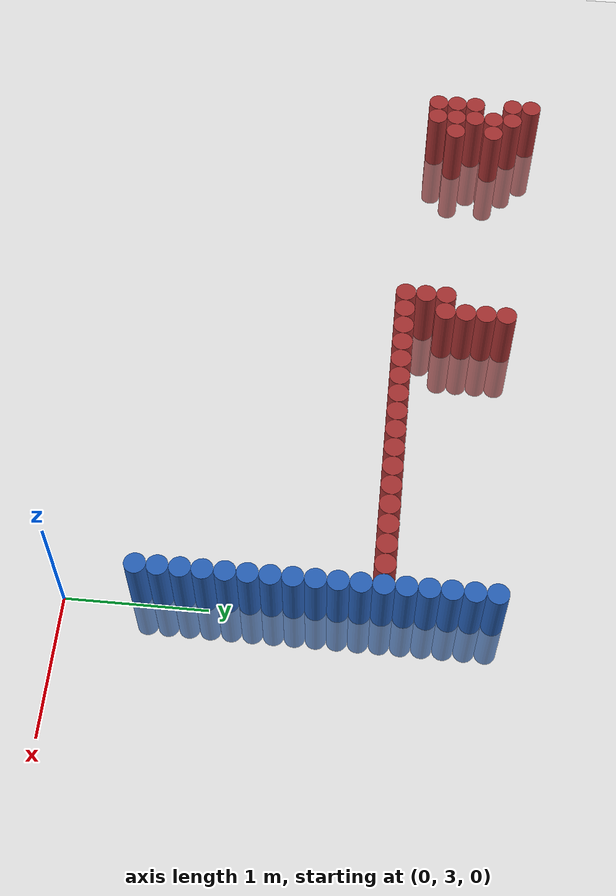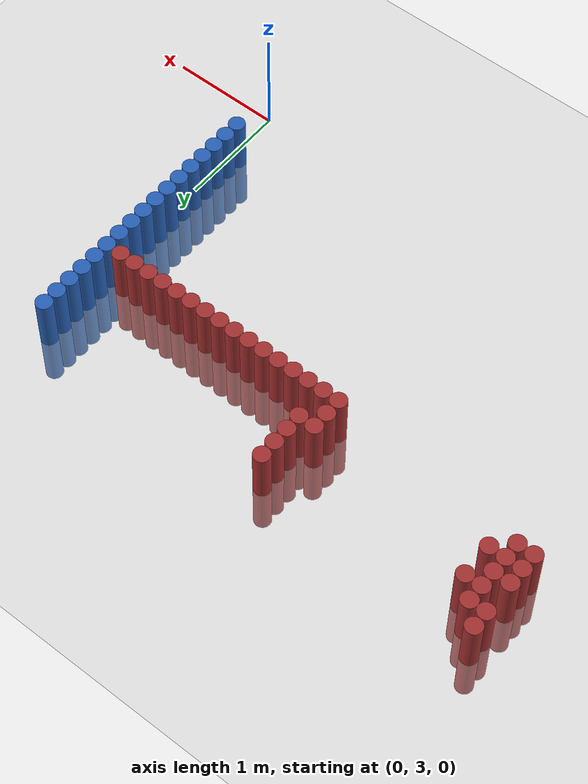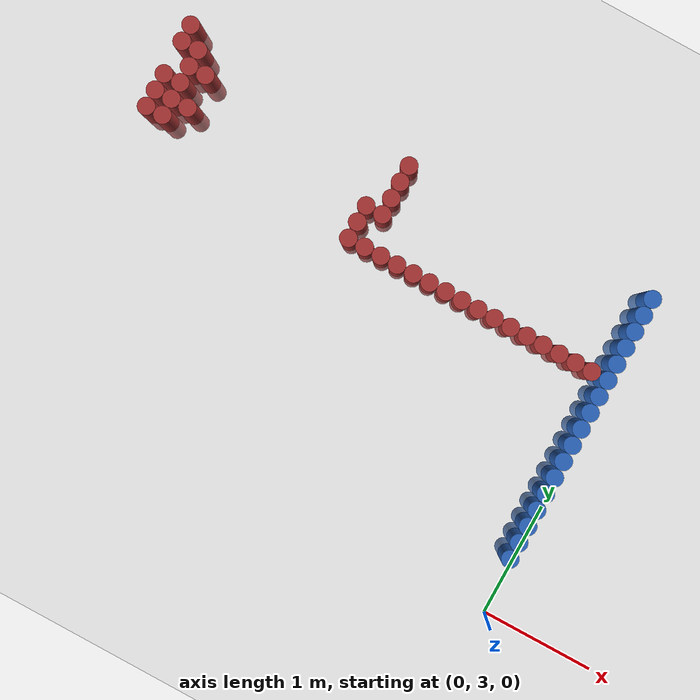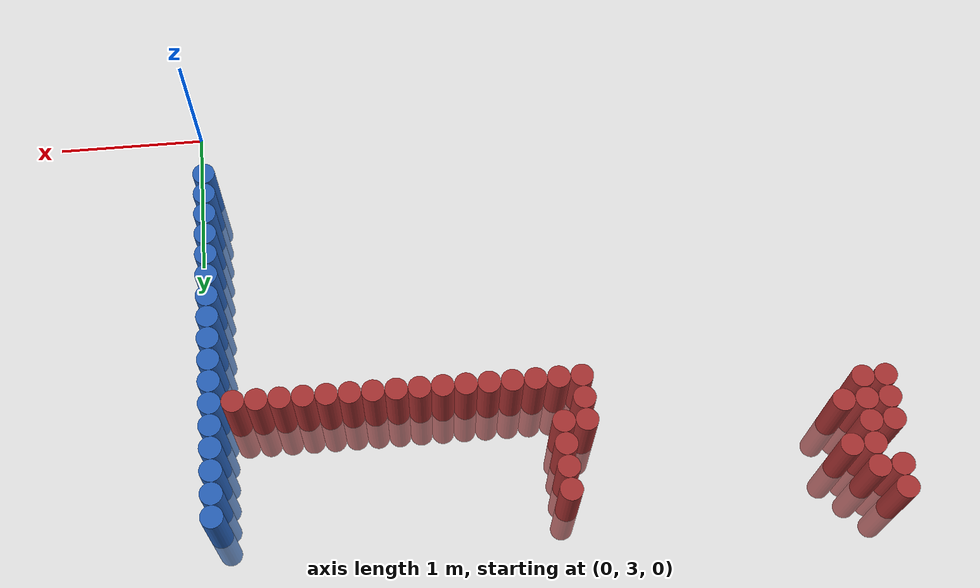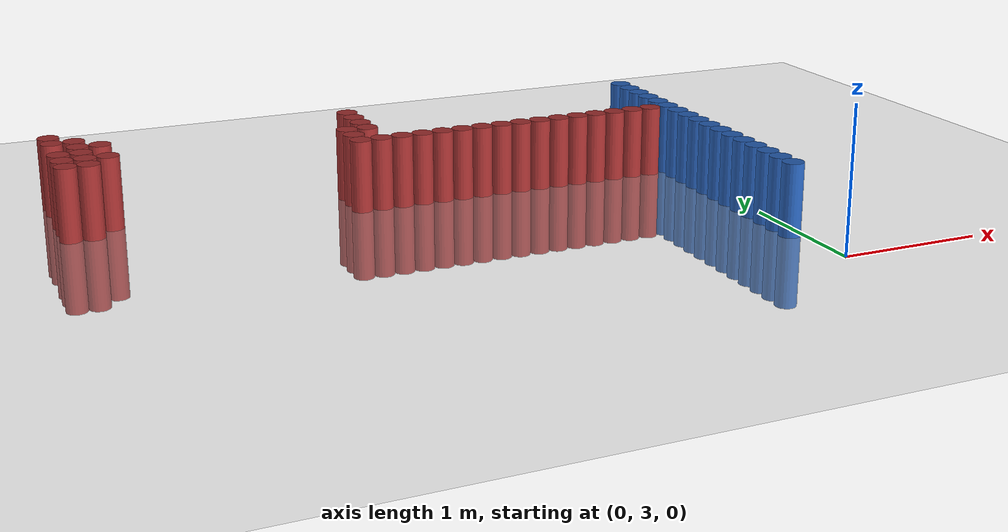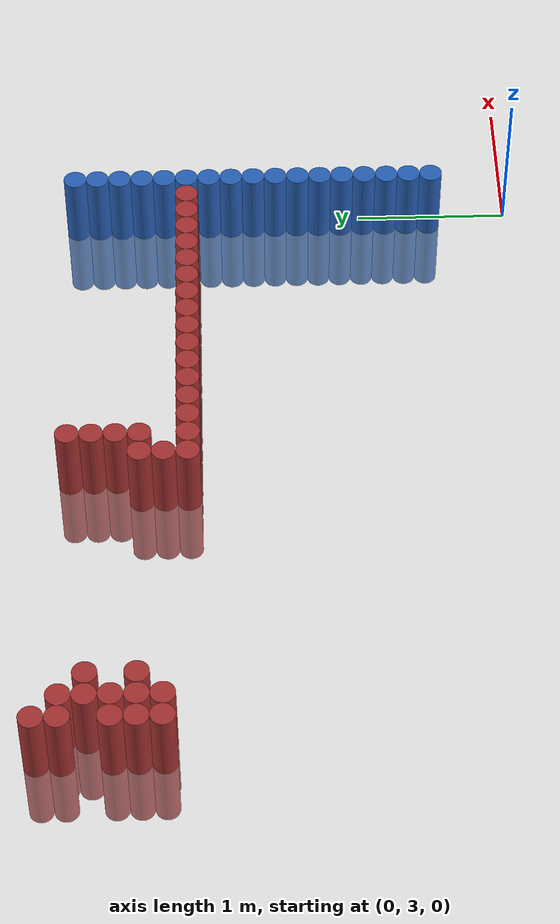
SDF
<sdf version="1.6">
 <world name="default">
  <model name="ground_plane">
   <static>1</static>
   <link name="link">
    <collision name="collision">
     <geometry><plane><normal>0 0 1</normal><size>100 100</size></plane></geometry>
     <surface><friction><ode><mu>100</mu><mu2>50</mu2></ode></friction></surface>
    </collision>
    <visual name="visual">
     <cast_shadows>0</cast_shadows>
     <geometry><plane><normal>0 0 1</normal><size>100 100</size></plane></geometry>
     <material>
      <script><uri>file://media/materials/scripts/gazebo.material</uri><name>Gazebo/Grey</name></script>
     </material>
    </visual>
   </link>
  </model>
  <model name="unit_cylinder_103">
   <static>1</static>
   <pose>-0.075000 3.525000 0.000000 0.000000 0.000000 0.000000</pose>
   <link name="link">
    <inertial>
     <mass>1</mass>
     <inertia><ixx>0.145833</ixx><ixy>0</ixy><ixz>0</ixz><iyy>0.145833</iyy><iyz>0</iyz><izz>0.125</izz></inertia>
    </inertial>
    <collision name="collision">
     <geometry><cylinder><radius>0.075000</radius><length>1</length></cylinder></geometry>
    </collision>
    <visual name="visual">
     <geometry><cylinder><radius>0.075000</radius><length>1</length></cylinder></geometry>
     <material>
      <ambient>0.152000 0.379000 0.720000 1</ambient>
      <diffuse>0.152000 0.379000 0.720000 1</diffuse>
     </material>
     <material>
      <script><name>Gazebo/Grey</name><uri>file://media/materials/scripts/gazebo.material</uri></script>
     </material>
    </visual>
   </link>
  </model>
  <model name="unit_cylinder_105">
   <static>1</static>
   <pose>-0.075000 3.675000 0.000000 0.000000 0.000000 0.000000</pose>
   <link name="link">
    <inertial>
     <mass>1</mass>
     <inertia><ixx>0.145833</ixx><ixy>0</ixy><ixz>0</ixz><iyy>0.145833</iyy><iyz>0</iyz><izz>0.125</izz></inertia>
    </inertial>
    <collision name="collision">
     <geometry><cylinder><radius>0.075000</radius><length>1</length></cylinder></geometry>
    </collision>
    <visual name="visual">
     <geometry><cylinder><radius>0.075000</radius><length>1</length></cylinder></geometry>
     <material>
      <ambient>0.152000 0.379000 0.720000 1</ambient>
      <diffuse>0.152000 0.379000 0.720000 1</diffuse>
     </material>
     <material>
      <script><name>Gazebo/Grey</name><uri>file://media/materials/scripts/gazebo.material</uri></script>
     </material>
    </visual>
   </link>
  </model>
  <model name="unit_cylinder_107">
   <static>1</static>
   <pose>-0.075000 3.825000 0.000000 0.000000 0.000000 0.000000</pose>
   <link name="link">
    <inertial>
     <mass>1</mass>
     <inertia><ixx>0.145833</ixx><ixy>0</ixy><ixz>0</ixz><iyy>0.145833</iyy><iyz>0</iyz><izz>0.125</izz></inertia>
    </inertial>
    <collision name="collision">
     <geometry><cylinder><radius>0.075000</radius><length>1</length></cylinder></geometry>
    </collision>
    <visual name="visual">
     <geometry><cylinder><radius>0.075000</radius><length>1</length></cylinder></geometry>
     <material>
      <ambient>0.152000 0.379000 0.720000 1</ambient>
      <diffuse>0.152000 0.379000 0.720000 1</diffuse>
     </material>
     <material>
      <script><name>Gazebo/Grey</name><uri>file://media/materials/scripts/gazebo.material</uri></script>
     </material>
    </visual>
   </link>
  </model>
  <model name="unit_cylinder_109">
   <static>1</static>
   <pose>-0.075000 3.975000 0.000000 0.000000 0.000000 0.000000</pose>
   <link name="link">
    <inertial>
     <mass>1</mass>
     <inertia><ixx>0.145833</ixx><ixy>0</ixy><ixz>0</ixz><iyy>0.145833</iyy><iyz>0</iyz><izz>0.125</izz></inertia>
    </inertial>
    <collision name="collision">
     <geometry><cylinder><radius>0.075000</radius><length>1</length></cylinder></geometry>
    </collision>
    <visual name="visual">
     <geometry><cylinder><radius>0.075000</radius><length>1</length></cylinder></geometry>
     <material>
      <ambient>0.152000 0.379000 0.720000 1</ambient>
      <diffuse>0.152000 0.379000 0.720000 1</diffuse>
     </material>
     <material>
      <script><name>Gazebo/Grey</name><uri>file://media/materials/scripts/gazebo.material</uri></script>
     </material>
    </visual>
   </link>
  </model>
  <model name="unit_cylinder_111">
   <static>1</static>
   <pose>-0.075000 4.125000 0.000000 0.000000 0.000000 0.000000</pose>
   <link name="link">
    <inertial>
     <mass>1</mass>
     <inertia><ixx>0.145833</ixx><ixy>0</ixy><ixz>0</ixz><iyy>0.145833</iyy><iyz>0</iyz><izz>0.125</izz></inertia>
    </inertial>
    <collision name="collision">
     <geometry><cylinder><radius>0.075000</radius><length>1</length></cylinder></geometry>
    </collision>
    <visual name="visual">
     <geometry><cylinder><radius>0.075000</radius><length>1</length></cylinder></geometry>
     <material>
      <ambient>0.152000 0.379000 0.720000 1</ambient>
      <diffuse>0.152000 0.379000 0.720000 1</diffuse>
     </material>
     <material>
      <script><name>Gazebo/Grey</name><uri>file://media/materials/scripts/gazebo.material</uri></script>
     </material>
    </visual>
   </link>
  </model>
  <model name="unit_cylinder_113">
   <static>1</static>
   <pose>-0.075000 4.275000 0.000000 0.000000 0.000000 0.000000</pose>
   <link name="link">
    <inertial>
     <mass>1</mass>
     <inertia><ixx>0.145833</ixx><ixy>0</ixy><ixz>0</ixz><iyy>0.145833</iyy><iyz>0</iyz><izz>0.125</izz></inertia>
    </inertial>
    <collision name="collision">
     <geometry><cylinder><radius>0.075000</radius><length>1</length></cylinder></geometry>
    </collision>
    <visual name="visual">
     <geometry><cylinder><radius>0.075000</radius><length>1</length></cylinder></geometry>
     <material>
      <ambient>0.152000 0.379000 0.720000 1</ambient>
      <diffuse>0.152000 0.379000 0.720000 1</diffuse>
     </material>
     <material>
      <script><name>Gazebo/Grey</name><uri>file://media/materials/scripts/gazebo.material</uri></script>
     </material>
    </visual>
   </link>
  </model>
  <model name="unit_cylinder_115">
   <static>1</static>
   <pose>-0.075000 4.425000 0.000000 0.000000 0.000000 0.000000</pose>
   <link name="link">
    <inertial>
     <mass>1</mass>
     <inertia><ixx>0.145833</ixx><ixy>0</ixy><ixz>0</ixz><iyy>0.145833</iyy><iyz>0</iyz><izz>0.125</izz></inertia>
    </inertial>
    <collision name="collision">
     <geometry><cylinder><radius>0.075000</radius><length>1</length></cylinder></geometry>
    </collision>
    <visual name="visual">
     <geometry><cylinder><radius>0.075000</radius><length>1</length></cylinder></geometry>
     <material>
      <ambient>0.152000 0.379000 0.720000 1</ambient>
      <diffuse>0.152000 0.379000 0.720000 1</diffuse>
     </material>
     <material>
      <script><name>Gazebo/Grey</name><uri>file://media/materials/scripts/gazebo.material</uri></script>
     </material>
    </visual>
   </link>
  </model>
  <model name="unit_cylinder_117">
   <static>1</static>
   <pose>-0.075000 4.575000 0.000000 0.000000 0.000000 0.000000</pose>
   <link name="link">
    <inertial>
     <mass>1</mass>
     <inertia><ixx>0.145833</ixx><ixy>0</ixy><ixz>0</ixz><iyy>0.145833</iyy><iyz>0</iyz><izz>0.125</izz></inertia>
    </inertial>
    <collision name="collision">
     <geometry><cylinder><radius>0.075000</radius><length>1</length></cylinder></geometry>
    </collision>
    <visual name="visual">
     <geometry><cylinder><radius>0.075000</radius><length>1</length></cylinder></geometry>
     <material>
      <ambient>0.152000 0.379000 0.720000 1</ambient>
      <diffuse>0.152000 0.379000 0.720000 1</diffuse>
     </material>
     <material>
      <script><name>Gazebo/Grey</name><uri>file://media/materials/scripts/gazebo.material</uri></script>
     </material>
    </visual>
   </link>
  </model>
  <model name="unit_cylinder_119">
   <static>1</static>
   <pose>-0.075000 4.725000 0.000000 0.000000 0.000000 0.000000</pose>
   <link name="link">
    <inertial>
     <mass>1</mass>
     <inertia><ixx>0.145833</ixx><ixy>0</ixy><ixz>0</ixz><iyy>0.145833</iyy><iyz>0</iyz><izz>0.125</izz></inertia>
    </inertial>
    <collision name="collision">
     <geometry><cylinder><radius>0.075000</radius><length>1</length></cylinder></geometry>
    </collision>
    <visual name="visual">
     <geometry><cylinder><radius>0.075000</radius><length>1</length></cylinder></geometry>
     <material>
      <ambient>0.152000 0.379000 0.720000 1</ambient>
      <diffuse>0.152000 0.379000 0.720000 1</diffuse>
     </material>
     <material>
      <script><name>Gazebo/Grey</name><uri>file://media/materials/scripts/gazebo.material</uri></script>
     </material>
    </visual>
   </link>
  </model>
  <model name="unit_cylinder_121">
   <static>1</static>
   <pose>-0.075000 4.875000 0.000000 0.000000 0.000000 0.000000</pose>
   <link name="link">
    <inertial>
     <mass>1</mass>
     <inertia><ixx>0.145833</ixx><ixy>0</ixy><ixz>0</ixz><iyy>0.145833</iyy><iyz>0</iyz><izz>0.125</izz></inertia>
    </inertial>
    <collision name="collision">
     <geometry><cylinder><radius>0.075000</radius><length>1</length></cylinder></geometry>
    </collision>
    <visual name="visual">
     <geometry><cylinder><radius>0.075000</radius><length>1</length></cylinder></geometry>
     <material>
      <ambient>0.152000 0.379000 0.720000 1</ambient>
      <diffuse>0.152000 0.379000 0.720000 1</diffuse>
     </material>
     <material>
      <script><name>Gazebo/Grey</name><uri>file://media/materials/scripts/gazebo.material</uri></script>
     </material>
    </visual>
   </link>
  </model>
  <model name="unit_cylinder_123">
   <static>1</static>
   <pose>-0.075000 5.025000 0.000000 0.000000 0.000000 0.000000</pose>
   <link name="link">
    <inertial>
     <mass>1</mass>
     <inertia><ixx>0.145833</ixx><ixy>0</ixy><ixz>0</ixz><iyy>0.145833</iyy><iyz>0</iyz><izz>0.125</izz></inertia>
    </inertial>
    <collision name="collision">
     <geometry><cylinder><radius>0.075000</radius><length>1</length></cylinder></geometry>
    </collision>
    <visual name="visual">
     <geometry><cylinder><radius>0.075000</radius><length>1</length></cylinder></geometry>
     <material>
      <ambient>0.152000 0.379000 0.720000 1</ambient>
      <diffuse>0.152000 0.379000 0.720000 1</diffuse>
     </material>
     <material>
      <script><name>Gazebo/Grey</name><uri>file://media/materials/scripts/gazebo.material</uri></script>
     </material>
    </visual>
   </link>
  </model>
  <model name="unit_cylinder_290">
   <static>1</static>
   <pose>-4.425000 5.325000 0.000000 0.000000 0.000000 0.000000</pose>
   <link name="link">
    <inertial>
     <mass>1</mass>
     <inertia><ixx>0.145833</ixx><ixy>0</ixy><ixz>0</ixz><iyy>0.145833</iyy><iyz>0</iyz><izz>0.125</izz></inertia>
    </inertial>
    <collision name="collision">
     <geometry><cylinder><radius>0.075000</radius><length>1</length></cylinder></geometry>
    </collision>
    <visual name="visual">
     <geometry><cylinder><radius>0.075000</radius><length>1</length></cylinder></geometry>
     <material>
      <ambient>0.648000 0.192000 0.192000 1</ambient>
      <diffuse>0.648000 0.192000 0.192000 1</diffuse>
     </material>
     <material>
      <script><name>Gazebo/Grey</name><uri>file://media/materials/scripts/gazebo.material</uri></script>
     </material>
    </visual>
   </link>
  </model>
  <model name="unit_cylinder_291">
   <static>1</static>
   <pose>-4.425000 5.475000 0.000000 0.000000 0.000000 0.000000</pose>
   <link name="link">
    <inertial>
     <mass>1</mass>
     <inertia><ixx>0.145833</ixx><ixy>0</ixy><ixz>0</ixz><iyy>0.145833</iyy><iyz>0</iyz><izz>0.125</izz></inertia>
    </inertial>
    <collision name="collision">
     <geometry><cylinder><radius>0.075000</radius><length>1</length></cylinder></geometry>
    </collision>
    <visual name="visual">
     <geometry><cylinder><radius>0.075000</radius><length>1</length></cylinder></geometry>
     <material>
      <ambient>0.648000 0.192000 0.192000 1</ambient>
      <diffuse>0.648000 0.192000 0.192000 1</diffuse>
     </material>
     <material>
      <script><name>Gazebo/Grey</name><uri>file://media/materials/scripts/gazebo.material</uri></script>
     </material>
    </visual>
   </link>
  </model>
  <model name="unit_cylinder_292">
   <static>1</static>
   <pose>-4.425000 5.625000 0.000000 0.000000 0.000000 0.000000</pose>
   <link name="link">
    <inertial>
     <mass>1</mass>
     <inertia><ixx>0.145833</ixx><ixy>0</ixy><ixz>0</ixz><iyy>0.145833</iyy><iyz>0</iyz><izz>0.125</izz></inertia>
    </inertial>
    <collision name="collision">
     <geometry><cylinder><radius>0.075000</radius><length>1</length></cylinder></geometry>
    </collision>
    <visual name="visual">
     <geometry><cylinder><radius>0.075000</radius><length>1</length></cylinder></geometry>
     <material>
      <ambient>0.648000 0.192000 0.192000 1</ambient>
      <diffuse>0.648000 0.192000 0.192000 1</diffuse>
     </material>
     <material>
      <script><name>Gazebo/Grey</name><uri>file://media/materials/scripts/gazebo.material</uri></script>
     </material>
    </visual>
   </link>
  </model>
  <model name="unit_cylinder_293">
   <static>1</static>
   <pose>-4.425000 5.925000 0.000000 0.000000 0.000000 0.000000</pose>
   <link name="link">
    <inertial>
     <mass>1</mass>
     <inertia><ixx>0.145833</ixx><ixy>0</ixy><ixz>0</ixz><iyy>0.145833</iyy><iyz>0</iyz><izz>0.125</izz></inertia>
    </inertial>
    <collision name="collision">
     <geometry><cylinder><radius>0.075000</radius><length>1</length></cylinder></geometry>
    </collision>
    <visual name="visual">
     <geometry><cylinder><radius>0.075000</radius><length>1</length></cylinder></geometry>
     <material>
      <ambient>0.648000 0.192000 0.192000 1</ambient>
      <diffuse>0.648000 0.192000 0.192000 1</diffuse>
     </material>
     <material>
      <script><name>Gazebo/Grey</name><uri>file://media/materials/scripts/gazebo.material</uri></script>
     </material>
    </visual>
   </link>
  </model>
  <model name="unit_cylinder_294">
   <static>1</static>
   <pose>-4.425000 6.075000 0.000000 0.000000 0.000000 0.000000</pose>
   <link name="link">
    <inertial>
     <mass>1</mass>
     <inertia><ixx>0.145833</ixx><ixy>0</ixy><ixz>0</ixz><iyy>0.145833</iyy><iyz>0</iyz><izz>0.125</izz></inertia>
    </inertial>
    <collision name="collision">
     <geometry><cylinder><radius>0.075000</radius><length>1</length></cylinder></geometry>
    </collision>
    <visual name="visual">
     <geometry><cylinder><radius>0.075000</radius><length>1</length></cylinder></geometry>
     <material>
      <ambient>0.648000 0.192000 0.192000 1</ambient>
      <diffuse>0.648000 0.192000 0.192000 1</diffuse>
     </material>
     <material>
      <script><name>Gazebo/Grey</name><uri>file://media/materials/scripts/gazebo.material</uri></script>
     </material>
    </visual>
   </link>
  </model>
  <model name="unit_cylinder_305">
   <static>1</static>
   <pose>-4.275000 5.325000 0.000000 0.000000 0.000000 0.000000</pose>
   <link name="link">
    <inertial>
     <mass>1</mass>
     <inertia><ixx>0.145833</ixx><ixy>0</ixy><ixz>0</ixz><iyy>0.145833</iyy><iyz>0</iyz><izz>0.125</izz></inertia>
    </inertial>
    <collision name="collision">
     <geometry><cylinder><radius>0.075000</radius><length>1</length></cylinder></geometry>
    </collision>
    <visual name="visual">
     <geometry><cylinder><radius>0.075000</radius><length>1</length></cylinder></geometry>
     <material>
      <ambient>0.648000 0.192000 0.192000 1</ambient>
      <diffuse>0.648000 0.192000 0.192000 1</diffuse>
     </material>
     <material>
      <script><name>Gazebo/Grey</name><uri>file://media/materials/scripts/gazebo.material</uri></script>
     </material>
    </visual>
   </link>
  </model>
  <model name="unit_cylinder_306">
   <static>1</static>
   <pose>-4.275000 5.475000 0.000000 0.000000 0.000000 0.000000</pose>
   <link name="link">
    <inertial>
     <mass>1</mass>
     <inertia><ixx>0.145833</ixx><ixy>0</ixy><ixz>0</ixz><iyy>0.145833</iyy><iyz>0</iyz><izz>0.125</izz></inertia>
    </inertial>
    <collision name="collision">
     <geometry><cylinder><radius>0.075000</radius><length>1</length></cylinder></geometry>
    </collision>
    <visual name="visual">
     <geometry><cylinder><radius>0.075000</radius><length>1</length></cylinder></geometry>
     <material>
      <ambient>0.648000 0.192000 0.192000 1</ambient>
      <diffuse>0.648000 0.192000 0.192000 1</diffuse>
     </material>
     <material>
      <script><name>Gazebo/Grey</name><uri>file://media/materials/scripts/gazebo.material</uri></script>
     </material>
    </visual>
   </link>
  </model>
  <model name="unit_cylinder_307">
   <static>1</static>
   <pose>-4.275000 5.625000 0.000000 0.000000 0.000000 0.000000</pose>
   <link name="link">
    <inertial>
     <mass>1</mass>
     <inertia><ixx>0.145833</ixx><ixy>0</ixy><ixz>0</ixz><iyy>0.145833</iyy><iyz>0</iyz><izz>0.125</izz></inertia>
    </inertial>
    <collision name="collision">
     <geometry><cylinder><radius>0.075000</radius><length>1</length></cylinder></geometry>
    </collision>
    <visual name="visual">
     <geometry><cylinder><radius>0.075000</radius><length>1</length></cylinder></geometry>
     <material>
      <ambient>0.648000 0.192000 0.192000 1</ambient>
      <diffuse>0.648000 0.192000 0.192000 1</diffuse>
     </material>
     <material>
      <script><name>Gazebo/Grey</name><uri>file://media/materials/scripts/gazebo.material</uri></script>
     </material>
    </visual>
   </link>
  </model>
  <model name="unit_cylinder_308">
   <static>1</static>
   <pose>-4.275000 5.775000 0.000000 0.000000 0.000000 0.000000</pose>
   <link name="link">
    <inertial>
     <mass>1</mass>
     <inertia><ixx>0.145833</ixx><ixy>0</ixy><ixz>0</ixz><iyy>0.145833</iyy><iyz>0</iyz><izz>0.125</izz></inertia>
    </inertial>
    <collision name="collision">
     <geometry><cylinder><radius>0.075000</radius><length>1</length></cylinder></geometry>
    </collision>
    <visual name="visual">
     <geometry><cylinder><radius>0.075000</radius><length>1</length></cylinder></geometry>
     <material>
      <ambient>0.648000 0.192000 0.192000 1</ambient>
      <diffuse>0.648000 0.192000 0.192000 1</diffuse>
     </material>
     <material>
      <script><name>Gazebo/Grey</name><uri>file://media/materials/scripts/gazebo.material</uri></script>
     </material>
    </visual>
   </link>
  </model>
  <model name="unit_cylinder_309">
   <static>1</static>
   <pose>-4.275000 5.925000 0.000000 0.000000 0.000000 0.000000</pose>
   <link name="link">
    <inertial>
     <mass>1</mass>
     <inertia><ixx>0.145833</ixx><ixy>0</ixy><ixz>0</ixz><iyy>0.145833</iyy><iyz>0</iyz><izz>0.125</izz></inertia>
    </inertial>
    <collision name="collision">
     <geometry><cylinder><radius>0.075000</radius><length>1</length></cylinder></geometry>
    </collision>
    <visual name="visual">
     <geometry><cylinder><radius>0.075000</radius><length>1</length></cylinder></geometry>
     <material>
      <ambient>0.648000 0.192000 0.192000 1</ambient>
      <diffuse>0.648000 0.192000 0.192000 1</diffuse>
     </material>
     <material>
      <script><name>Gazebo/Grey</name><uri>file://media/materials/scripts/gazebo.material</uri></script>
     </material>
    </visual>
   </link>
  </model>
  <model name="unit_cylinder_322">
   <static>1</static>
   <pose>-4.125000 5.475000 0.000000 0.000000 0.000000 0.000000</pose>
   <link name="link">
    <inertial>
     <mass>1</mass>
     <inertia><ixx>0.145833</ixx><ixy>0</ixy><ixz>0</ixz><iyy>0.145833</iyy><iyz>0</iyz><izz>0.125</izz></inertia>
    </inertial>
    <collision name="collision">
     <geometry><cylinder><radius>0.075000</radius><length>1</length></cylinder></geometry>
    </collision>
    <visual name="visual">
     <geometry><cylinder><radius>0.075000</radius><length>1</length></cylinder></geometry>
     <material>
      <ambient>0.648000 0.192000 0.192000 1</ambient>
      <diffuse>0.648000 0.192000 0.192000 1</diffuse>
     </material>
     <material>
      <script><name>Gazebo/Grey</name><uri>file://media/materials/scripts/gazebo.material</uri></script>
     </material>
    </visual>
   </link>
  </model>
  <model name="unit_cylinder_323">
   <static>1</static>
   <pose>-4.125000 5.775000 0.000000 0.000000 0.000000 0.000000</pose>
   <link name="link">
    <inertial>
     <mass>1</mass>
     <inertia><ixx>0.145833</ixx><ixy>0</ixy><ixz>0</ixz><iyy>0.145833</iyy><iyz>0</iyz><izz>0.125</izz></inertia>
    </inertial>
    <collision name="collision">
     <geometry><cylinder><radius>0.075000</radius><length>1</length></cylinder></geometry>
    </collision>
    <visual name="visual">
     <geometry><cylinder><radius>0.075000</radius><length>1</length></cylinder></geometry>
     <material>
      <ambient>0.648000 0.192000 0.192000 1</ambient>
      <diffuse>0.648000 0.192000 0.192000 1</diffuse>
     </material>
     <material>
      <script><name>Gazebo/Grey</name><uri>file://media/materials/scripts/gazebo.material</uri></script>
     </material>
    </visual>
   </link>
  </model>
  <model name="unit_cylinder_365">
   <static>1</static>
   <pose>-2.475000 5.175000 0.000000 0.000000 0.000000 0.000000</pose>
   <link name="link">
    <inertial>
     <mass>1</mass>
     <inertia><ixx>0.145833</ixx><ixy>0</ixy><ixz>0</ixz><iyy>0.145833</iyy><iyz>0</iyz><izz>0.125</izz></inertia>
    </inertial>
    <collision name="collision">
     <geometry><cylinder><radius>0.075000</radius><length>1</length></cylinder></geometry>
    </collision>
    <visual name="visual">
     <geometry><cylinder><radius>0.075000</radius><length>1</length></cylinder></geometry>
     <material>
      <ambient>0.648000 0.192000 0.192000 1</ambient>
      <diffuse>0.648000 0.192000 0.192000 1</diffuse>
     </material>
     <material>
      <script><name>Gazebo/Grey</name><uri>file://media/materials/scripts/gazebo.material</uri></script>
     </material>
    </visual>
   </link>
  </model>
  <model name="unit_cylinder_366">
   <static>1</static>
   <pose>-2.475000 5.325000 0.000000 0.000000 0.000000 0.000000</pose>
   <link name="link">
    <inertial>
     <mass>1</mass>
     <inertia><ixx>0.145833</ixx><ixy>0</ixy><ixz>0</ixz><iyy>0.145833</iyy><iyz>0</iyz><izz>0.125</izz></inertia>
    </inertial>
    <collision name="collision">
     <geometry><cylinder><radius>0.075000</radius><length>1</length></cylinder></geometry>
    </collision>
    <visual name="visual">
     <geometry><cylinder><radius>0.075000</radius><length>1</length></cylinder></geometry>
     <material>
      <ambient>0.648000 0.192000 0.192000 1</ambient>
      <diffuse>0.648000 0.192000 0.192000 1</diffuse>
     </material>
     <material>
      <script><name>Gazebo/Grey</name><uri>file://media/materials/scripts/gazebo.material</uri></script>
     </material>
    </visual>
   </link>
  </model>
  <model name="unit_cylinder_367">
   <static>1</static>
   <pose>-2.475000 5.475000 0.000000 0.000000 0.000000 0.000000</pose>
   <link name="link">
    <inertial>
     <mass>1</mass>
     <inertia><ixx>0.145833</ixx><ixy>0</ixy><ixz>0</ixz><iyy>0.145833</iyy><iyz>0</iyz><izz>0.125</izz></inertia>
    </inertial>
    <collision name="collision">
     <geometry><cylinder><radius>0.075000</radius><length>1</length></cylinder></geometry>
    </collision>
    <visual name="visual">
     <geometry><cylinder><radius>0.075000</radius><length>1</length></cylinder></geometry>
     <material>
      <ambient>0.648000 0.192000 0.192000 1</ambient>
      <diffuse>0.648000 0.192000 0.192000 1</diffuse>
     </material>
     <material>
      <script><name>Gazebo/Grey</name><uri>file://media/materials/scripts/gazebo.material</uri></script>
     </material>
    </visual>
   </link>
  </model>
  <model name="unit_cylinder_369">
   <static>1</static>
   <pose>-2.325000 5.175000 0.000000 0.000000 0.000000 0.000000</pose>
   <link name="link">
    <inertial>
     <mass>1</mass>
     <inertia><ixx>0.145833</ixx><ixy>0</ixy><ixz>0</ixz><iyy>0.145833</iyy><iyz>0</iyz><izz>0.125</izz></inertia>
    </inertial>
    <collision name="collision">
     <geometry><cylinder><radius>0.075000</radius><length>1</length></cylinder></geometry>
    </collision>
    <visual name="visual">
     <geometry><cylinder><radius>0.075000</radius><length>1</length></cylinder></geometry>
     <material>
      <ambient>0.648000 0.192000 0.192000 1</ambient>
      <diffuse>0.648000 0.192000 0.192000 1</diffuse>
     </material>
     <material>
      <script><name>Gazebo/Grey</name><uri>file://media/materials/scripts/gazebo.material</uri></script>
     </material>
    </visual>
   </link>
  </model>
  <model name="unit_cylinder_370">
   <static>1</static>
   <pose>-2.325000 5.475000 0.000000 0.000000 0.000000 0.000000</pose>
   <link name="link">
    <inertial>
     <mass>1</mass>
     <inertia><ixx>0.145833</ixx><ixy>0</ixy><ixz>0</ixz><iyy>0.145833</iyy><iyz>0</iyz><izz>0.125</izz></inertia>
    </inertial>
    <collision name="collision">
     <geometry><cylinder><radius>0.075000</radius><length>1</length></cylinder></geometry>
    </collision>
    <visual name="visual">
     <geometry><cylinder><radius>0.075000</radius><length>1</length></cylinder></geometry>
     <material>
      <ambient>0.648000 0.192000 0.192000 1</ambient>
      <diffuse>0.648000 0.192000 0.192000 1</diffuse>
     </material>
     <material>
      <script><name>Gazebo/Grey</name><uri>file://media/materials/scripts/gazebo.material</uri></script>
     </material>
    </visual>
   </link>
  </model>
  <model name="unit_cylinder_371">
   <static>1</static>
   <pose>-2.325000 5.625000 0.000000 0.000000 0.000000 0.000000</pose>
   <link name="link">
    <inertial>
     <mass>1</mass>
     <inertia><ixx>0.145833</ixx><ixy>0</ixy><ixz>0</ixz><iyy>0.145833</iyy><iyz>0</iyz><izz>0.125</izz></inertia>
    </inertial>
    <collision name="collision">
     <geometry><cylinder><radius>0.075000</radius><length>1</length></cylinder></geometry>
    </collision>
    <visual name="visual">
     <geometry><cylinder><radius>0.075000</radius><length>1</length></cylinder></geometry>
     <material>
      <ambient>0.648000 0.192000 0.192000 1</ambient>
      <diffuse>0.648000 0.192000 0.192000 1</diffuse>
     </material>
     <material>
      <script><name>Gazebo/Grey</name><uri>file://media/materials/scripts/gazebo.material</uri></script>
     </material>
    </visual>
   </link>
  </model>
  <model name="unit_cylinder_372">
   <static>1</static>
   <pose>-2.325000 5.775000 0.000000 0.000000 0.000000 0.000000</pose>
   <link name="link">
    <inertial>
     <mass>1</mass>
     <inertia><ixx>0.145833</ixx><ixy>0</ixy><ixz>0</ixz><iyy>0.145833</iyy><iyz>0</iyz><izz>0.125</izz></inertia>
    </inertial>
    <collision name="collision">
     <geometry><cylinder><radius>0.075000</radius><length>1</length></cylinder></geometry>
    </collision>
    <visual name="visual">
     <geometry><cylinder><radius>0.075000</radius><length>1</length></cylinder></geometry>
     <material>
      <ambient>0.648000 0.192000 0.192000 1</ambient>
      <diffuse>0.648000 0.192000 0.192000 1</diffuse>
     </material>
     <material>
      <script><name>Gazebo/Grey</name><uri>file://media/materials/scripts/gazebo.material</uri></script>
     </material>
    </visual>
   </link>
  </model>
  <model name="unit_cylinder_373">
   <static>1</static>
   <pose>-2.325000 5.925000 0.000000 0.000000 0.000000 0.000000</pose>
   <link name="link">
    <inertial>
     <mass>1</mass>
     <inertia><ixx>0.145833</ixx><ixy>0</ixy><ixz>0</ixz><iyy>0.145833</iyy><iyz>0</iyz><izz>0.125</izz></inertia>
    </inertial>
    <collision name="collision">
     <geometry><cylinder><radius>0.075000</radius><length>1</length></cylinder></geometry>
    </collision>
    <visual name="visual">
     <geometry><cylinder><radius>0.075000</radius><length>1</length></cylinder></geometry>
     <material>
      <ambient>0.648000 0.192000 0.192000 1</ambient>
      <diffuse>0.648000 0.192000 0.192000 1</diffuse>
     </material>
     <material>
      <script><name>Gazebo/Grey</name><uri>file://media/materials/scripts/gazebo.material</uri></script>
     </material>
    </visual>
   </link>
  </model>
  <model name="unit_cylinder_380">
   <static>1</static>
   <pose>-2.175000 5.175000 0.000000 0.000000 0.000000 0.000000</pose>
   <link name="link">
    <inertial>
     <mass>1</mass>
     <inertia><ixx>0.145833</ixx><ixy>0</ixy><ixz>0</ixz><iyy>0.145833</iyy><iyz>0</iyz><izz>0.125</izz></inertia>
    </inertial>
    <collision name="collision">
     <geometry><cylinder><radius>0.075000</radius><length>1</length></cylinder></geometry>
    </collision>
    <visual name="visual">
     <geometry><cylinder><radius>0.075000</radius><length>1</length></cylinder></geometry>
     <material>
      <ambient>0.648000 0.192000 0.192000 1</ambient>
      <diffuse>0.648000 0.192000 0.192000 1</diffuse>
     </material>
     <material>
      <script><name>Gazebo/Grey</name><uri>file://media/materials/scripts/gazebo.material</uri></script>
     </material>
    </visual>
   </link>
  </model>
  <model name="unit_cylinder_401">
   <static>1</static>
   <pose>-2.025000 5.175000 0.000000 0.000000 0.000000 0.000000</pose>
   <link name="link">
    <inertial>
     <mass>1</mass>
     <inertia><ixx>0.145833</ixx><ixy>0</ixy><ixz>0</ixz><iyy>0.145833</iyy><iyz>0</iyz><izz>0.125</izz></inertia>
    </inertial>
    <collision name="collision">
     <geometry><cylinder><radius>0.075000</radius><length>1</length></cylinder></geometry>
    </collision>
    <visual name="visual">
     <geometry><cylinder><radius>0.075000</radius><length>1</length></cylinder></geometry>
     <material>
      <ambient>0.648000 0.192000 0.192000 1</ambient>
      <diffuse>0.648000 0.192000 0.192000 1</diffuse>
     </material>
     <material>
      <script><name>Gazebo/Grey</name><uri>file://media/materials/scripts/gazebo.material</uri></script>
     </material>
    </visual>
   </link>
  </model>
  <model name="unit_cylinder_403">
   <static>1</static>
   <pose>-1.875000 5.175000 0.000000 0.000000 0.000000 0.000000</pose>
   <link name="link">
    <inertial>
     <mass>1</mass>
     <inertia><ixx>0.145833</ixx><ixy>0</ixy><ixz>0</ixz><iyy>0.145833</iyy><iyz>0</iyz><izz>0.125</izz></inertia>
    </inertial>
    <collision name="collision">
     <geometry><cylinder><radius>0.075000</radius><length>1</length></cylinder></geometry>
    </collision>
    <visual name="visual">
     <geometry><cylinder><radius>0.075000</radius><length>1</length></cylinder></geometry>
     <material>
      <ambient>0.648000 0.192000 0.192000 1</ambient>
      <diffuse>0.648000 0.192000 0.192000 1</diffuse>
     </material>
     <material>
      <script><name>Gazebo/Grey</name><uri>file://media/materials/scripts/gazebo.material</uri></script>
     </material>
    </visual>
   </link>
  </model>
  <model name="unit_cylinder_405">
   <static>1</static>
   <pose>-1.725000 5.175000 0.000000 0.000000 0.000000 0.000000</pose>
   <link name="link">
    <inertial>
     <mass>1</mass>
     <inertia><ixx>0.145833</ixx><ixy>0</ixy><ixz>0</ixz><iyy>0.145833</iyy><iyz>0</iyz><izz>0.125</izz></inertia>
    </inertial>
    <collision name="collision">
     <geometry><cylinder><radius>0.075000</radius><length>1</length></cylinder></geometry>
    </collision>
    <visual name="visual">
     <geometry><cylinder><radius>0.075000</radius><length>1</length></cylinder></geometry>
     <material>
      <ambient>0.648000 0.192000 0.192000 1</ambient>
      <diffuse>0.648000 0.192000 0.192000 1</diffuse>
     </material>
     <material>
      <script><name>Gazebo/Grey</name><uri>file://media/materials/scripts/gazebo.material</uri></script>
     </material>
    </visual>
   </link>
  </model>
  <model name="unit_cylinder_407">
   <static>1</static>
   <pose>-1.575000 5.175000 0.000000 0.000000 0.000000 0.000000</pose>
   <link name="link">
    <inertial>
     <mass>1</mass>
     <inertia><ixx>0.145833</ixx><ixy>0</ixy><ixz>0</ixz><iyy>0.145833</iyy><iyz>0</iyz><izz>0.125</izz></inertia>
    </inertial>
    <collision name="collision">
     <geometry><cylinder><radius>0.075000</radius><length>1</length></cylinder></geometry>
    </collision>
    <visual name="visual">
     <geometry><cylinder><radius>0.075000</radius><length>1</length></cylinder></geometry>
     <material>
      <ambient>0.648000 0.192000 0.192000 1</ambient>
      <diffuse>0.648000 0.192000 0.192000 1</diffuse>
     </material>
     <material>
      <script><name>Gazebo/Grey</name><uri>file://media/materials/scripts/gazebo.material</uri></script>
     </material>
    </visual>
   </link>
  </model>
  <model name="unit_cylinder_409">
   <static>1</static>
   <pose>-1.425000 5.175000 0.000000 0.000000 0.000000 0.000000</pose>
   <link name="link">
    <inertial>
     <mass>1</mass>
     <inertia><ixx>0.145833</ixx><ixy>0</ixy><ixz>0</ixz><iyy>0.145833</iyy><iyz>0</iyz><izz>0.125</izz></inertia>
    </inertial>
    <collision name="collision">
     <geometry><cylinder><radius>0.075000</radius><length>1</length></cylinder></geometry>
    </collision>
    <visual name="visual">
     <geometry><cylinder><radius>0.075000</radius><length>1</length></cylinder></geometry>
     <material>
      <ambient>0.648000 0.192000 0.192000 1</ambient>
      <diffuse>0.648000 0.192000 0.192000 1</diffuse>
     </material>
     <material>
      <script><name>Gazebo/Grey</name><uri>file://media/materials/scripts/gazebo.material</uri></script>
     </material>
    </visual>
   </link>
  </model>
  <model name="unit_cylinder_411">
   <static>1</static>
   <pose>-1.275000 5.175000 0.000000 0.000000 0.000000 0.000000</pose>
   <link name="link">
    <inertial>
     <mass>1</mass>
     <inertia><ixx>0.145833</ixx><ixy>0</ixy><ixz>0</ixz><iyy>0.145833</iyy><iyz>0</iyz><izz>0.125</izz></inertia>
    </inertial>
    <collision name="collision">
     <geometry><cylinder><radius>0.075000</radius><length>1</length></cylinder></geometry>
    </collision>
    <visual name="visual">
     <geometry><cylinder><radius>0.075000</radius><length>1</length></cylinder></geometry>
     <material>
      <ambient>0.648000 0.192000 0.192000 1</ambient>
      <diffuse>0.648000 0.192000 0.192000 1</diffuse>
     </material>
     <material>
      <script><name>Gazebo/Grey</name><uri>file://media/materials/scripts/gazebo.material</uri></script>
     </material>
    </visual>
   </link>
  </model>
  <model name="unit_cylinder_413">
   <static>1</static>
   <pose>-1.125000 5.175000 0.000000 0.000000 0.000000 0.000000</pose>
   <link name="link">
    <inertial>
     <mass>1</mass>
     <inertia><ixx>0.145833</ixx><ixy>0</ixy><ixz>0</ixz><iyy>0.145833</iyy><iyz>0</iyz><izz>0.125</izz></inertia>
    </inertial>
    <collision name="collision">
     <geometry><cylinder><radius>0.075000</radius><length>1</length></cylinder></geometry>
    </collision>
    <visual name="visual">
     <geometry><cylinder><radius>0.075000</radius><length>1</length></cylinder></geometry>
     <material>
      <ambient>0.648000 0.192000 0.192000 1</ambient>
      <diffuse>0.648000 0.192000 0.192000 1</diffuse>
     </material>
     <material>
      <script><name>Gazebo/Grey</name><uri>file://media/materials/scripts/gazebo.material</uri></script>
     </material>
    </visual>
   </link>
  </model>
  <model name="unit_cylinder_415">
   <static>1</static>
   <pose>-0.975000 5.175000 0.000000 0.000000 0.000000 0.000000</pose>
   <link name="link">
    <inertial>
     <mass>1</mass>
     <inertia><ixx>0.145833</ixx><ixy>0</ixy><ixz>0</ixz><iyy>0.145833</iyy><iyz>0</iyz><izz>0.125</izz></inertia>
    </inertial>
    <collision name="collision">
     <geometry><cylinder><radius>0.075000</radius><length>1</length></cylinder></geometry>
    </collision>
    <visual name="visual">
     <geometry><cylinder><radius>0.075000</radius><length>1</length></cylinder></geometry>
     <material>
      <ambient>0.648000 0.192000 0.192000 1</ambient>
      <diffuse>0.648000 0.192000 0.192000 1</diffuse>
     </material>
     <material>
      <script><name>Gazebo/Grey</name><uri>file://media/materials/scripts/gazebo.material</uri></script>
     </material>
    </visual>
   </link>
  </model>
  <model name="unit_cylinder_417">
   <static>1</static>
   <pose>-0.825000 5.175000 0.000000 0.000000 0.000000 0.000000</pose>
   <link name="link">
    <inertial>
     <mass>1</mass>
     <inertia><ixx>0.145833</ixx><ixy>0</ixy><ixz>0</ixz><iyy>0.145833</iyy><iyz>0</iyz><izz>0.125</izz></inertia>
    </inertial>
    <collision name="collision">
     <geometry><cylinder><radius>0.075000</radius><length>1</length></cylinder></geometry>
    </collision>
    <visual name="visual">
     <geometry><cylinder><radius>0.075000</radius><length>1</length></cylinder></geometry>
     <material>
      <ambient>0.648000 0.192000 0.192000 1</ambient>
      <diffuse>0.648000 0.192000 0.192000 1</diffuse>
     </material>
     <material>
      <script><name>Gazebo/Grey</name><uri>file://media/materials/scripts/gazebo.material</uri></script>
     </material>
    </visual>
   </link>
  </model>
  <model name="unit_cylinder_419">
   <static>1</static>
   <pose>-0.675000 5.175000 0.000000 0.000000 0.000000 0.000000</pose>
   <link name="link">
    <inertial>
     <mass>1</mass>
     <inertia><ixx>0.145833</ixx><ixy>0</ixy><ixz>0</ixz><iyy>0.145833</iyy><iyz>0</iyz><izz>0.125</izz></inertia>
    </inertial>
    <collision name="collision">
     <geometry><cylinder><radius>0.075000</radius><length>1</length></cylinder></geometry>
    </collision>
    <visual name="visual">
     <geometry><cylinder><radius>0.075000</radius><length>1</length></cylinder></geometry>
     <material>
      <ambient>0.648000 0.192000 0.192000 1</ambient>
      <diffuse>0.648000 0.192000 0.192000 1</diffuse>
     </material>
     <material>
      <script><name>Gazebo/Grey</name><uri>file://media/materials/scripts/gazebo.material</uri></script>
     </material>
    </visual>
   </link>
  </model>
  <model name="unit_cylinder_421">
   <static>1</static>
   <pose>-0.525000 5.175000 0.000000 0.000000 0.000000 0.000000</pose>
   <link name="link">
    <inertial>
     <mass>1</mass>
     <inertia><ixx>0.145833</ixx><ixy>0</ixy><ixz>0</ixz><iyy>0.145833</iyy><iyz>0</iyz><izz>0.125</izz></inertia>
    </inertial>
    <collision name="collision">
     <geometry><cylinder><radius>0.075000</radius><length>1</length></cylinder></geometry>
    </collision>
    <visual name="visual">
     <geometry><cylinder><radius>0.075000</radius><length>1</length></cylinder></geometry>
     <material>
      <ambient>0.648000 0.192000 0.192000 1</ambient>
      <diffuse>0.648000 0.192000 0.192000 1</diffuse>
     </material>
     <material>
      <script><name>Gazebo/Grey</name><uri>file://media/materials/scripts/gazebo.material</uri></script>
     </material>
    </visual>
   </link>
  </model>
  <model name="unit_cylinder_423">
   <static>1</static>
   <pose>-0.375000 5.175000 0.000000 0.000000 0.000000 0.000000</pose>
   <link name="link">
    <inertial>
     <mass>1</mass>
     <inertia><ixx>0.145833</ixx><ixy>0</ixy><ixz>0</ixz><iyy>0.145833</iyy><iyz>0</iyz><izz>0.125</izz></inertia>
    </inertial>
    <collision name="collision">
     <geometry><cylinder><radius>0.075000</radius><length>1</length></cylinder></geometry>
    </collision>
    <visual name="visual">
     <geometry><cylinder><radius>0.075000</radius><length>1</length></cylinder></geometry>
     <material>
      <ambient>0.648000 0.192000 0.192000 1</ambient>
      <diffuse>0.648000 0.192000 0.192000 1</diffuse>
     </material>
     <material>
      <script><name>Gazebo/Grey</name><uri>file://media/materials/scripts/gazebo.material</uri></script>
     </material>
    </visual>
   </link>
  </model>
  <model name="unit_cylinder_425">
   <static>1</static>
   <pose>-0.225000 5.175000 0.000000 0.000000 0.000000 0.000000</pose>
   <link name="link">
    <inertial>
     <mass>1</mass>
     <inertia><ixx>0.145833</ixx><ixy>0</ixy><ixz>0</ixz><iyy>0.145833</iyy><iyz>0</iyz><izz>0.125</izz></inertia>
    </inertial>
    <collision name="collision">
     <geometry><cylinder><radius>0.075000</radius><length>1</length></cylinder></geometry>
    </collision>
    <visual name="visual">
     <geometry><cylinder><radius>0.075000</radius><length>1</length></cylinder></geometry>
     <material>
      <ambient>0.648000 0.192000 0.192000 1</ambient>
      <diffuse>0.648000 0.192000 0.192000 1</diffuse>
     </material>
     <material>
      <script><name>Gazebo/Grey</name><uri>file://media/materials/scripts/gazebo.material</uri></script>
     </material>
    </visual>
   </link>
  </model>
  <model name="unit_cylinder_427">
   <static>1</static>
   <pose>-0.075000 5.175000 0.000000 0.000000 0.000000 0.000000</pose>
   <link name="link">
    <inertial>
     <mass>1</mass>
     <inertia><ixx>0.145833</ixx><ixy>0</ixy><ixz>0</ixz><iyy>0.145833</iyy><iyz>0</iyz><izz>0.125</izz></inertia>
    </inertial>
    <collision name="collision">
     <geometry><cylinder><radius>0.075000</radius><length>1</length></cylinder></geometry>
    </collision>
    <visual name="visual">
     <geometry><cylinder><radius>0.075000</radius><length>1</length></cylinder></geometry>
     <material>
      <ambient>0.152000 0.379000 0.720000 1</ambient>
      <diffuse>0.152000 0.379000 0.720000 1</diffuse>
     </material>
     <material>
      <script><name>Gazebo/Grey</name><uri>file://media/materials/scripts/gazebo.material</uri></script>
     </material>
    </visual>
   </link>
  </model>
  <model name="unit_cylinder_428">
   <static>1</static>
   <pose>-0.075000 5.325000 0.000000 0.000000 0.000000 0.000000</pose>
   <link name="link">
    <inertial>
     <mass>1</mass>
     <inertia><ixx>0.145833</ixx><ixy>0</ixy><ixz>0</ixz><iyy>0.145833</iyy><iyz>0</iyz><izz>0.125</izz></inertia>
    </inertial>
    <collision name="collision">
     <geometry><cylinder><radius>0.075000</radius><length>1</length></cylinder></geometry>
    </collision>
    <visual name="visual">
     <geometry><cylinder><radius>0.075000</radius><length>1</length></cylinder></geometry>
     <material>
      <ambient>0.152000 0.379000 0.720000 1</ambient>
      <diffuse>0.152000 0.379000 0.720000 1</diffuse>
     </material>
     <material>
      <script><name>Gazebo/Grey</name><uri>file://media/materials/scripts/gazebo.material</uri></script>
     </material>
    </visual>
   </link>
  </model>
  <model name="unit_cylinder_429">
   <static>1</static>
   <pose>-0.075000 5.475000 0.000000 0.000000 0.000000 0.000000</pose>
   <link name="link">
    <inertial>
     <mass>1</mass>
     <inertia><ixx>0.145833</ixx><ixy>0</ixy><ixz>0</ixz><iyy>0.145833</iyy><iyz>0</iyz><izz>0.125</izz></inertia>
    </inertial>
    <collision name="collision">
     <geometry><cylinder><radius>0.075000</radius><length>1</length></cylinder></geometry>
    </collision>
    <visual name="visual">
     <geometry><cylinder><radius>0.075000</radius><length>1</length></cylinder></geometry>
     <material>
      <ambient>0.152000 0.379000 0.720000 1</ambient>
      <diffuse>0.152000 0.379000 0.720000 1</diffuse>
     </material>
     <material>
      <script><name>Gazebo/Grey</name><uri>file://media/materials/scripts/gazebo.material</uri></script>
     </material>
    </visual>
   </link>
  </model>
  <model name="unit_cylinder_430">
   <static>1</static>
   <pose>-0.075000 5.625000 0.000000 0.000000 0.000000 0.000000</pose>
   <link name="link">
    <inertial>
     <mass>1</mass>
     <inertia><ixx>0.145833</ixx><ixy>0</ixy><ixz>0</ixz><iyy>0.145833</iyy><iyz>0</iyz><izz>0.125</izz></inertia>
    </inertial>
    <collision name="collision">
     <geometry><cylinder><radius>0.075000</radius><length>1</length></cylinder></geometry>
    </collision>
    <visual name="visual">
     <geometry><cylinder><radius>0.075000</radius><length>1</length></cylinder></geometry>
     <material>
      <ambient>0.152000 0.379000 0.720000 1</ambient>
      <diffuse>0.152000 0.379000 0.720000 1</diffuse>
     </material>
     <material>
      <script><name>Gazebo/Grey</name><uri>file://media/materials/scripts/gazebo.material</uri></script>
     </material>
    </visual>
   </link>
  </model>
  <model name="unit_cylinder_431">
   <static>1</static>
   <pose>-0.075000 5.775000 0.000000 0.000000 0.000000 0.000000</pose>
   <link name="link">
    <inertial>
     <mass>1</mass>
     <inertia><ixx>0.145833</ixx><ixy>0</ixy><ixz>0</ixz><iyy>0.145833</iyy><iyz>0</iyz><izz>0.125</izz></inertia>
    </inertial>
    <collision name="collision">
     <geometry><cylinder><radius>0.075000</radius><length>1</length></cylinder></geometry>
    </collision>
    <visual name="visual">
     <geometry><cylinder><radius>0.075000</radius><length>1</length></cylinder></geometry>
     <material>
      <ambient>0.152000 0.379000 0.720000 1</ambient>
      <diffuse>0.152000 0.379000 0.720000 1</diffuse>
     </material>
     <material>
      <script><name>Gazebo/Grey</name><uri>file://media/materials/scripts/gazebo.material</uri></script>
     </material>
    </visual>
   </link>
  </model>
  <model name="unit_cylinder_432">
   <static>1</static>
   <pose>-0.075000 5.925000 0.000000 0.000000 0.000000 0.000000</pose>
   <link name="link">
    <inertial>
     <mass>1</mass>
     <inertia><ixx>0.145833</ixx><ixy>0</ixy><ixz>0</ixz><iyy>0.145833</iyy><iyz>0</iyz><izz>0.125</izz></inertia>
    </inertial>
    <collision name="collision">
     <geometry><cylinder><radius>0.075000</radius><length>1</length></cylinder></geometry>
    </collision>
    <visual name="visual">
     <geometry><cylinder><radius>0.075000</radius><length>1</length></cylinder></geometry>
     <material>
      <ambient>0.152000 0.379000 0.720000 1</ambient>
      <diffuse>0.152000 0.379000 0.720000 1</diffuse>
     </material>
     <material>
      <script><name>Gazebo/Grey</name><uri>file://media/materials/scripts/gazebo.material</uri></script>
     </material>
    </visual>
   </link>
  </model>
 </world>
</sdf>
